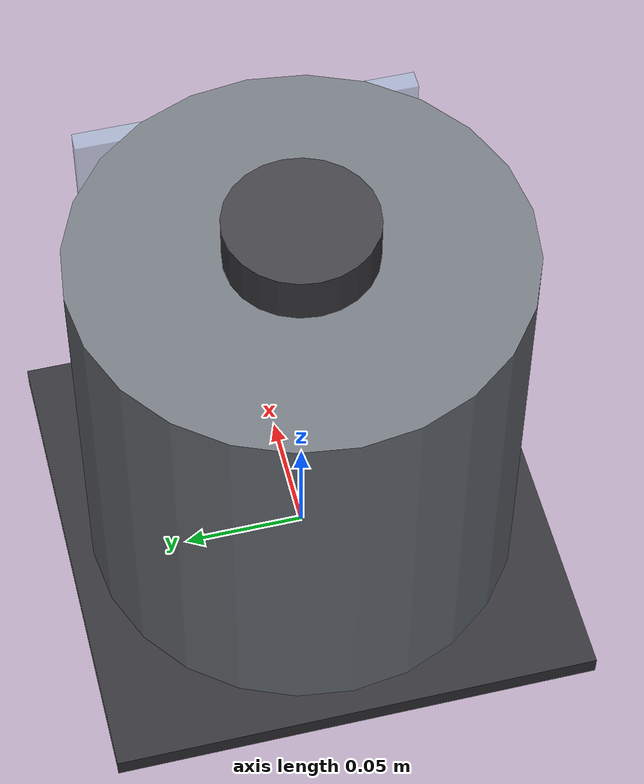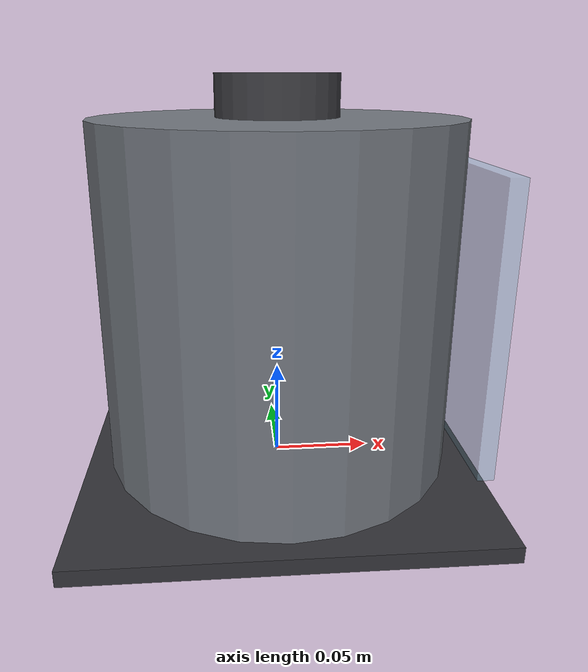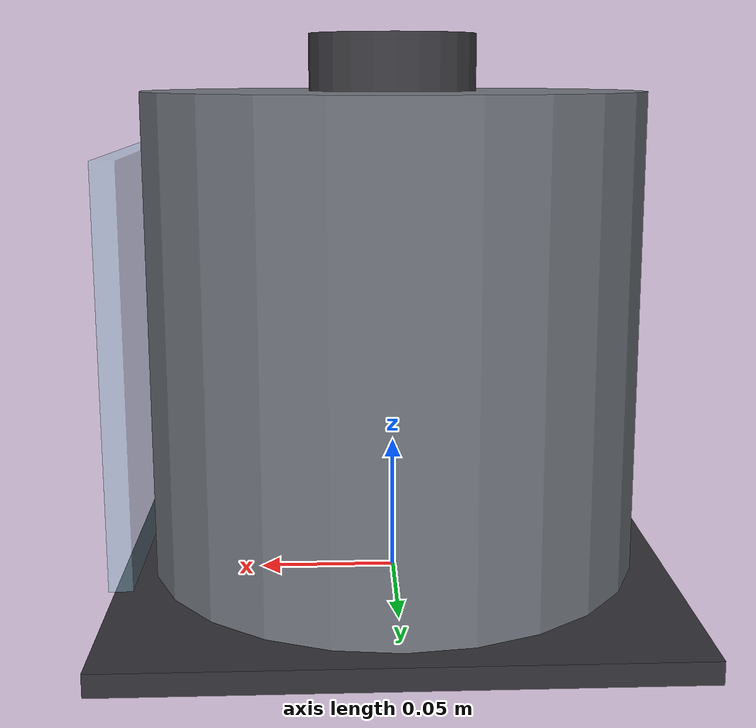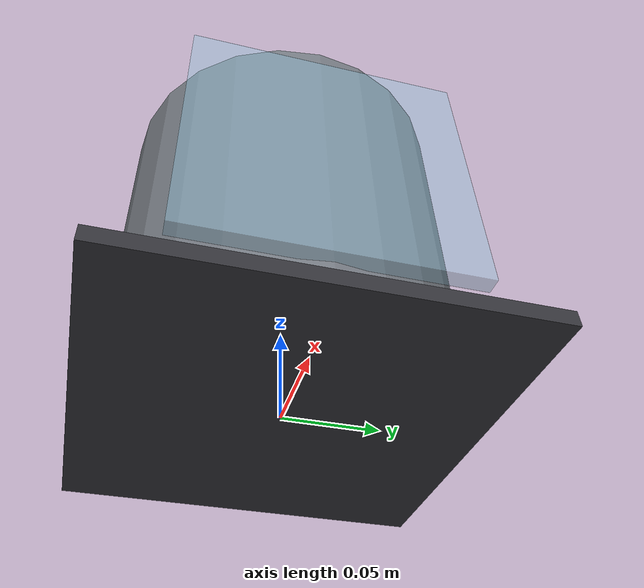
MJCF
<?xml version="1.0" encoding="utf-8"?>
<mujoco model="real_lab_twente_university_sputter">
  <compiler angle="radian" autolimits="true"/>
  <default>
    <default class="body"><geom contype="1" conaffinity="1"/></default>
  </default>
  <worldbody>
    <body name="base">
      <geom type="cylinder" size="0.09 0.09" pos="0 0 0.09" rgba="0.45 0.47 0.5 1" class="body"/>
      <geom type="box" size="0.1 0.1 0.004" pos="0 0 0.002" rgba="0.2 0.2 0.22 1" class="body"/>
      <geom type="cylinder" size="0.03 0.015" pos="0 0 0.185" rgba="0.25 0.25 0.27 1" class="body"/>
      <body name="load_hatch" pos="0.09 0.0 0.09">
        <joint name="load_hatch_joint" type="hinge" axis="0 1 0" range="0 1.4" damping="0.6" frictionloss="0.25"/>
  <geom type="box" size="0.004 0.07 0.07" pos="0.002 0 0" rgba="0.55 0.75 0.85 0.4" class="body"/>
      </body>
    </body>
  </worldbody>
</mujoco>
